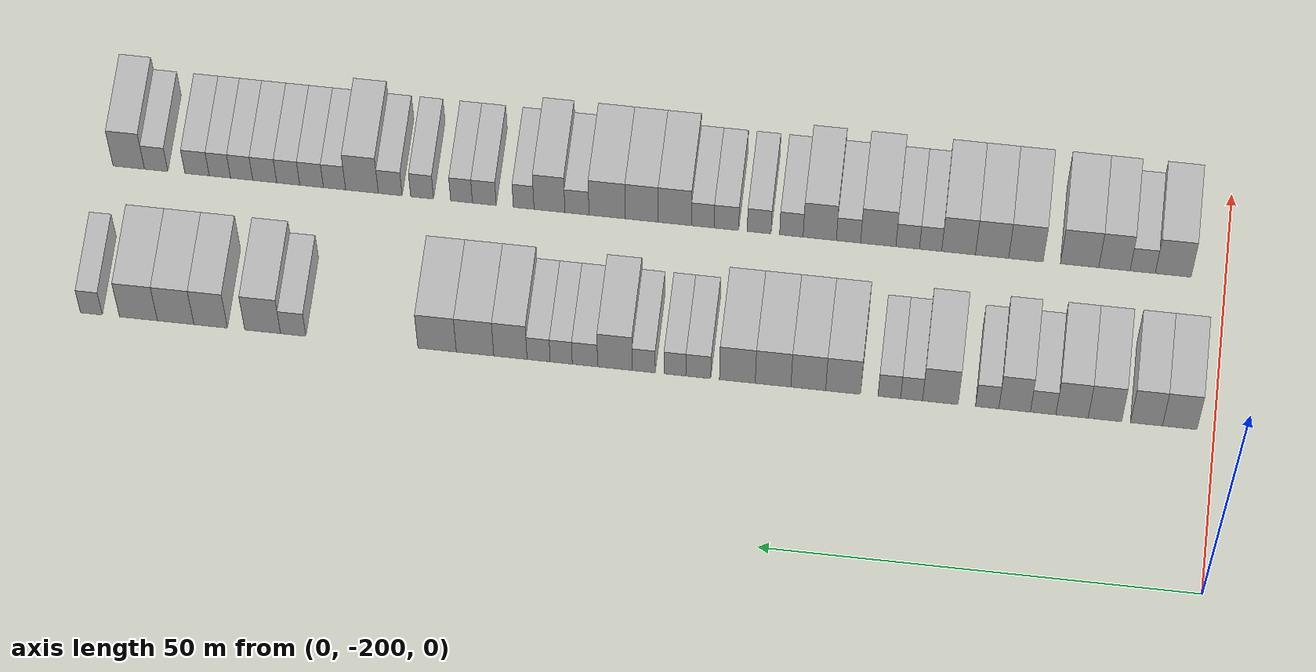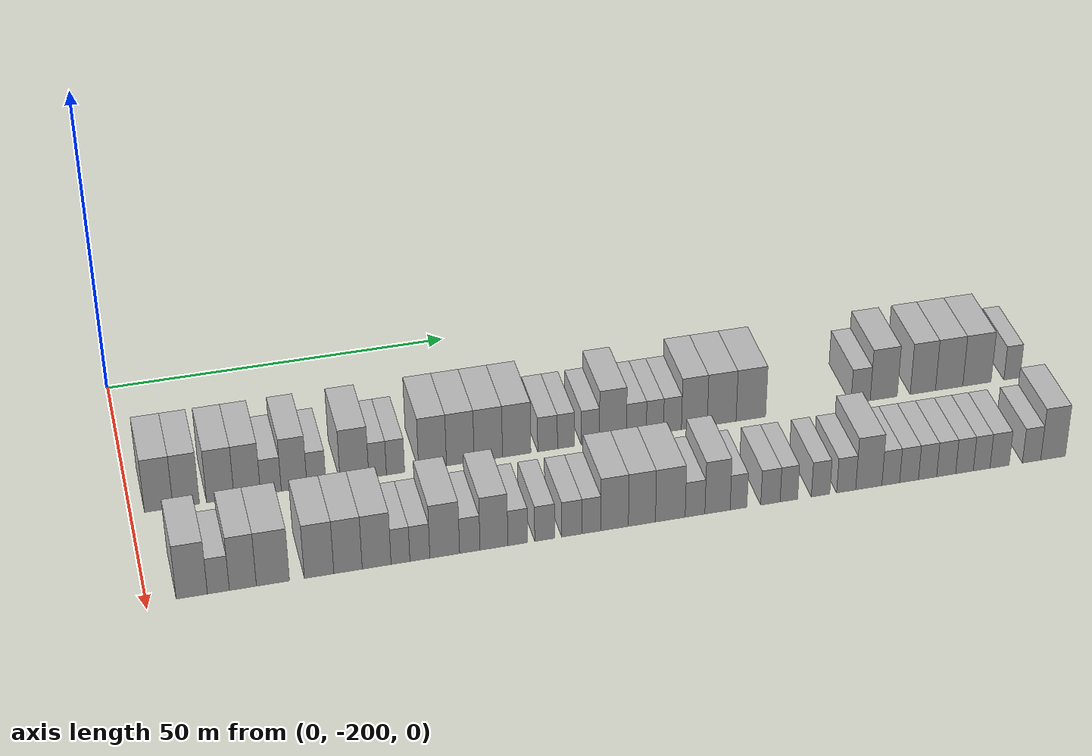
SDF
<sdf version="1.6">
 <world name="default">
  <model name="building_1">
   <static>1</static>
   <pose>25.0000 -196.0314 0 0.000000 0.000000 0.000000</pose>
   <link name="link">
    <pose>0 0 4.50 0 0 0</pose>
    <collision name="collision"><geometry><box><size>10.0000 3.9372 9.0000</size></box></geometry></collision>
    <visual name="visual">
     <cast_shadows>0</cast_shadows>
     <geometry><box><size>10.0000 3.9372 9.0000</size></box></geometry>
     <material>
      <script>
       <uri>model://HANNAS_wall/materials/scripts</uri>
       <uri>model://HANNAS_wall/materials/textures</uri>
       <name>vrc/HANNAS_wall</name>
      </script>
     </material>
    </visual>
   </link>
  </model>
  <model name="building_2">
   <static>1</static>
   <pose>25.0000 -192.2365 0 0.000000 0.000000 0.000000</pose>
   <link name="link">
    <pose>0 0 4.50 0 0 0</pose>
    <collision name="collision"><geometry><box><size>10.0000 3.6526 9.0000</size></box></geometry></collision>
    <visual name="visual">
     <cast_shadows>0</cast_shadows>
     <geometry><box><size>10.0000 3.6526 9.0000</size></box></geometry>
     <material>
      <script>
       <uri>model://HANNAS_wall/materials/scripts</uri>
       <uri>model://HANNAS_wall/materials/textures</uri>
       <name>vrc/HANNAS_wall</name>
      </script>
     </material>
    </visual>
   </link>
  </model>
  <model name="building_3">
   <static>1</static>
   <pose>25.0000 -187.5017 0 0.000000 0.000000 0.000000</pose>
   <link name="link">
    <pose>0 0 4.50 0 0 0</pose>
    <collision name="collision"><geometry><box><size>10.0000 3.8169 9.0000</size></box></geometry></collision>
    <visual name="visual">
     <cast_shadows>0</cast_shadows>
     <geometry><box><size>10.0000 3.8169 9.0000</size></box></geometry>
     <material>
      <script>
       <uri>model://HANNAS_wall/materials/scripts</uri>
       <uri>model://HANNAS_wall/materials/textures</uri>
       <name>vrc/HANNAS_wall</name>
      </script>
     </material>
    </visual>
   </link>
  </model>
  <model name="building_4">
   <static>1</static>
   <pose>25.0000 -183.7541 0 0.000000 0.000000 0.000000</pose>
   <link name="link">
    <pose>0 0 4.50 0 0 0</pose>
    <collision name="collision"><geometry><box><size>10.0000 3.6784 9.0000</size></box></geometry></collision>
    <visual name="visual">
     <cast_shadows>0</cast_shadows>
     <geometry><box><size>10.0000 3.6784 9.0000</size></box></geometry>
     <material>
      <script>
       <uri>model://HANNAS_wall/materials/scripts</uri>
       <uri>model://HANNAS_wall/materials/textures</uri>
       <name>vrc/HANNAS_wall</name>
      </script>
     </material>
    </visual>
   </link>
  </model>
  <model name="building_5">
   <static>1</static>
   <pose>25.0000 -180.4640 0 0.000000 0.000000 0.000000</pose>
   <link name="link">
    <pose>0 0 3.00 0 0 0</pose>
    <collision name="collision"><geometry><box><size>10.0000 2.9017 6.0000</size></box></geometry></collision>
    <visual name="visual">
     <cast_shadows>0</cast_shadows>
     <geometry><box><size>10.0000 2.9017 6.0000</size></box></geometry>
     <material>
      <script>
       <uri>model://HANNAS_wall/materials/scripts</uri>
       <uri>model://HANNAS_wall/materials/textures</uri>
       <name>vrc/HANNAS_wall</name>
      </script>
     </material>
    </visual>
   </link>
  </model>
  <model name="building_6">
   <static>1</static>
   <pose>25.0000 -177.2093 0 0.000000 0.000000 0.000000</pose>
   <link name="link">
    <pose>0 0 4.50 0 0 0</pose>
    <collision name="collision"><geometry><box><size>10.0000 3.6077 9.0000</size></box></geometry></collision>
    <visual name="visual">
     <cast_shadows>0</cast_shadows>
     <geometry><box><size>10.0000 3.6077 9.0000</size></box></geometry>
     <material>
      <script>
       <uri>model://HANNAS_wall/materials/scripts</uri>
       <uri>model://HANNAS_wall/materials/textures</uri>
       <name>vrc/HANNAS_wall</name>
      </script>
     </material>
    </visual>
   </link>
  </model>
  <model name="building_7">
   <static>1</static>
   <pose>25.0000 -174.0762 0 0.000000 0.000000 0.000000</pose>
   <link name="link">
    <pose>0 0 3.00 0 0 0</pose>
    <collision name="collision"><geometry><box><size>10.0000 2.6586 6.0000</size></box></geometry></collision>
    <visual name="visual">
     <cast_shadows>0</cast_shadows>
     <geometry><box><size>10.0000 2.6586 6.0000</size></box></geometry>
     <material>
      <script>
       <uri>model://HANNAS_wall/materials/scripts</uri>
       <uri>model://HANNAS_wall/materials/textures</uri>
       <name>vrc/HANNAS_wall</name>
      </script>
     </material>
    </visual>
   </link>
  </model>
  <model name="building_8">
   <static>1</static>
   <pose>25.0000 -168.7161 0 0.000000 0.000000 0.000000</pose>
   <link name="link">
    <pose>0 0 4.50 0 0 0</pose>
    <collision name="collision"><geometry><box><size>10.0000 4.0615 9.0000</size></box></geometry></collision>
    <visual name="visual">
     <cast_shadows>0</cast_shadows>
     <geometry><box><size>10.0000 4.0615 9.0000</size></box></geometry>
     <material>
      <script>
       <uri>model://HANNAS_wall/materials/scripts</uri>
       <uri>model://HANNAS_wall/materials/textures</uri>
       <name>vrc/HANNAS_wall</name>
      </script>
     </material>
    </visual>
   </link>
  </model>
  <model name="building_9">
   <static>1</static>
   <pose>25.0000 -165.4350 0 0.000000 0.000000 0.000000</pose>
   <link name="link">
    <pose>0 0 3.00 0 0 0</pose>
    <collision name="collision"><geometry><box><size>10.0000 2.5007 6.0000</size></box></geometry></collision>
    <visual name="visual">
     <cast_shadows>0</cast_shadows>
     <geometry><box><size>10.0000 2.5007 6.0000</size></box></geometry>
     <material>
      <script>
       <uri>model://HANNAS_wall/materials/scripts</uri>
       <uri>model://HANNAS_wall/materials/textures</uri>
       <name>vrc/HANNAS_wall</name>
      </script>
     </material>
    </visual>
   </link>
  </model>
  <model name="building_10">
   <static>1</static>
   <pose>25.0000 -162.8917 0 0.000000 0.000000 0.000000</pose>
   <link name="link">
    <pose>0 0 3.00 0 0 0</pose>
    <collision name="collision"><geometry><box><size>10.0000 2.5860 6.0000</size></box></geometry></collision>
    <visual name="visual">
     <cast_shadows>0</cast_shadows>
     <geometry><box><size>10.0000 2.5860 6.0000</size></box></geometry>
     <material>
      <script>
       <uri>model://HANNAS_wall/materials/scripts</uri>
       <uri>model://HANNAS_wall/materials/textures</uri>
       <name>vrc/HANNAS_wall</name>
      </script>
     </material>
    </visual>
   </link>
  </model>
  <model name="building_11">
   <static>1</static>
   <pose>25.0000 -157.6022 0 0.000000 0.000000 0.000000</pose>
   <link name="link">
    <pose>0 0 4.50 0 0 0</pose>
    <collision name="collision"><geometry><box><size>10.0000 3.9928 9.0000</size></box></geometry></collision>
    <visual name="visual">
     <cast_shadows>0</cast_shadows>
     <geometry><box><size>10.0000 3.9928 9.0000</size></box></geometry>
     <material>
      <script>
       <uri>model://HANNAS_wall/materials/scripts</uri>
       <uri>model://HANNAS_wall/materials/textures</uri>
       <name>vrc/HANNAS_wall</name>
      </script>
     </material>
    </visual>
   </link>
  </model>
  <model name="building_12">
   <static>1</static>
   <pose>25.0000 -153.6152 0 0.000000 0.000000 0.000000</pose>
   <link name="link">
    <pose>0 0 4.50 0 0 0</pose>
    <collision name="collision"><geometry><box><size>10.0000 3.9812 9.0000</size></box></geometry></collision>
    <visual name="visual">
     <cast_shadows>0</cast_shadows>
     <geometry><box><size>10.0000 3.9812 9.0000</size></box></geometry>
     <material>
      <script>
       <uri>model://HANNAS_wall/materials/scripts</uri>
       <uri>model://HANNAS_wall/materials/textures</uri>
       <name>vrc/HANNAS_wall</name>
      </script>
     </material>
    </visual>
   </link>
  </model>
  <model name="building_13">
   <static>1</static>
   <pose>25.0000 -149.5801 0 0.000000 0.000000 0.000000</pose>
   <link name="link">
    <pose>0 0 4.50 0 0 0</pose>
    <collision name="collision"><geometry><box><size>10.0000 4.0890 9.0000</size></box></geometry></collision>
    <visual name="visual">
     <cast_shadows>0</cast_shadows>
     <geometry><box><size>10.0000 4.0890 9.0000</size></box></geometry>
     <material>
      <script>
       <uri>model://HANNAS_wall/materials/scripts</uri>
       <uri>model://HANNAS_wall/materials/textures</uri>
       <name>vrc/HANNAS_wall</name>
      </script>
     </material>
    </visual>
   </link>
  </model>
  <model name="building_14">
   <static>1</static>
   <pose>25.0000 -145.4824 0 0.000000 0.000000 0.000000</pose>
   <link name="link">
    <pose>0 0 4.50 0 0 0</pose>
    <collision name="collision"><geometry><box><size>10.0000 4.1064 9.0000</size></box></geometry></collision>
    <visual name="visual">
     <cast_shadows>0</cast_shadows>
     <geometry><box><size>10.0000 4.1064 9.0000</size></box></geometry>
     <material>
      <script>
       <uri>model://HANNAS_wall/materials/scripts</uri>
       <uri>model://HANNAS_wall/materials/textures</uri>
       <name>vrc/HANNAS_wall</name>
      </script>
     </material>
    </visual>
   </link>
  </model>
  <model name="building_15">
   <static>1</static>
   <pose>25.0000 -140.9967 0 0.000000 0.000000 0.000000</pose>
   <link name="link">
    <pose>0 0 3.00 0 0 0</pose>
    <collision name="collision"><geometry><box><size>10.0000 2.8648 6.0000</size></box></geometry></collision>
    <visual name="visual">
     <cast_shadows>0</cast_shadows>
     <geometry><box><size>10.0000 2.8648 6.0000</size></box></geometry>
     <material>
      <script>
       <uri>model://HANNAS_wall/materials/scripts</uri>
       <uri>model://HANNAS_wall/materials/textures</uri>
       <name>vrc/HANNAS_wall</name>
      </script>
     </material>
    </visual>
   </link>
  </model>
  <model name="building_16">
   <static>1</static>
   <pose>25.0000 -138.3111 0 0.000000 0.000000 0.000000</pose>
   <link name="link">
    <pose>0 0 3.00 0 0 0</pose>
    <collision name="collision"><geometry><box><size>10.0000 2.5065 6.0000</size></box></geometry></collision>
    <visual name="visual">
     <cast_shadows>0</cast_shadows>
     <geometry><box><size>10.0000 2.5065 6.0000</size></box></geometry>
     <material>
      <script>
       <uri>model://HANNAS_wall/materials/scripts</uri>
       <uri>model://HANNAS_wall/materials/textures</uri>
       <name>vrc/HANNAS_wall</name>
      </script>
     </material>
    </visual>
   </link>
  </model>
  <model name="building_17">
   <static>1</static>
   <pose>25.0000 -134.7319 0 0.000000 0.000000 0.000000</pose>
   <link name="link">
    <pose>0 0 3.00 0 0 0</pose>
    <collision name="collision"><geometry><box><size>10.0000 2.6518 6.0000</size></box></geometry></collision>
    <visual name="visual">
     <cast_shadows>0</cast_shadows>
     <geometry><box><size>10.0000 2.6518 6.0000</size></box></geometry>
     <material>
      <script>
       <uri>model://HANNAS_wall/materials/scripts</uri>
       <uri>model://HANNAS_wall/materials/textures</uri>
       <name>vrc/HANNAS_wall</name>
      </script>
     </material>
    </visual>
   </link>
  </model>
  <model name="building_18">
   <static>1</static>
   <pose>25.0000 -131.4228 0 0.000000 0.000000 0.000000</pose>
   <link name="link">
    <pose>0 0 4.50 0 0 0</pose>
    <collision name="collision"><geometry><box><size>10.0000 3.9664 9.0000</size></box></geometry></collision>
    <visual name="visual">
     <cast_shadows>0</cast_shadows>
     <geometry><box><size>10.0000 3.9664 9.0000</size></box></geometry>
     <material>
      <script>
       <uri>model://HANNAS_wall/materials/scripts</uri>
       <uri>model://HANNAS_wall/materials/textures</uri>
       <name>vrc/HANNAS_wall</name>
      </script>
     </material>
    </visual>
   </link>
  </model>
  <model name="building_19">
   <static>1</static>
   <pose>25.0000 -127.9781 0 0.000000 0.000000 0.000000</pose>
   <link name="link">
    <pose>0 0 3.00 0 0 0</pose>
    <collision name="collision"><geometry><box><size>10.0000 2.9230 6.0000</size></box></geometry></collision>
    <visual name="visual">
     <cast_shadows>0</cast_shadows>
     <geometry><box><size>10.0000 2.9230 6.0000</size></box></geometry>
     <material>
      <script>
       <uri>model://HANNAS_wall/materials/scripts</uri>
       <uri>model://HANNAS_wall/materials/textures</uri>
       <name>vrc/HANNAS_wall</name>
      </script>
     </material>
    </visual>
   </link>
  </model>
  <model name="building_20">
   <static>1</static>
   <pose>25.0000 -125.2448 0 0.000000 0.000000 0.000000</pose>
   <link name="link">
    <pose>0 0 3.00 0 0 0</pose>
    <collision name="collision"><geometry><box><size>10.0000 2.5437 6.0000</size></box></geometry></collision>
    <visual name="visual">
     <cast_shadows>0</cast_shadows>
     <geometry><box><size>10.0000 2.5437 6.0000</size></box></geometry>
     <material>
      <script>
       <uri>model://HANNAS_wall/materials/scripts</uri>
       <uri>model://HANNAS_wall/materials/textures</uri>
       <name>vrc/HANNAS_wall</name>
      </script>
     </material>
    </visual>
   </link>
  </model>
  <model name="building_21">
   <static>1</static>
   <pose>25.0000 -122.6416 0 0.000000 0.000000 0.000000</pose>
   <link name="link">
    <pose>0 0 3.00 0 0 0</pose>
    <collision name="collision"><geometry><box><size>10.0000 2.6627 6.0000</size></box></geometry></collision>
    <visual name="visual">
     <cast_shadows>0</cast_shadows>
     <geometry><box><size>10.0000 2.6627 6.0000</size></box></geometry>
     <material>
      <script>
       <uri>model://HANNAS_wall/materials/scripts</uri>
       <uri>model://HANNAS_wall/materials/textures</uri>
       <name>vrc/HANNAS_wall</name>
      </script>
     </material>
    </visual>
   </link>
  </model>
  <model name="building_22">
   <static>1</static>
   <pose>25.0000 -119.3938 0 0.000000 0.000000 0.000000</pose>
   <link name="link">
    <pose>0 0 4.50 0 0 0</pose>
    <collision name="collision"><geometry><box><size>10.0000 3.8329 9.0000</size></box></geometry></collision>
    <visual name="visual">
     <cast_shadows>0</cast_shadows>
     <geometry><box><size>10.0000 3.8329 9.0000</size></box></geometry>
     <material>
      <script>
       <uri>model://HANNAS_wall/materials/scripts</uri>
       <uri>model://HANNAS_wall/materials/textures</uri>
       <name>vrc/HANNAS_wall</name>
      </script>
     </material>
    </visual>
   </link>
  </model>
  <model name="building_23">
   <static>1</static>
   <pose>25.0000 -115.3170 0 0.000000 0.000000 0.000000</pose>
   <link name="link">
    <pose>0 0 4.50 0 0 0</pose>
    <collision name="collision"><geometry><box><size>10.0000 4.3206 9.0000</size></box></geometry></collision>
    <visual name="visual">
     <cast_shadows>0</cast_shadows>
     <geometry><box><size>10.0000 4.3206 9.0000</size></box></geometry>
     <material>
      <script>
       <uri>model://HANNAS_wall/materials/scripts</uri>
       <uri>model://HANNAS_wall/materials/textures</uri>
       <name>vrc/HANNAS_wall</name>
      </script>
     </material>
    </visual>
   </link>
  </model>
  <model name="building_24">
   <static>1</static>
   <pose>25.0000 -110.9429 0 0.000000 0.000000 0.000000</pose>
   <link name="link">
    <pose>0 0 4.50 0 0 0</pose>
    <collision name="collision"><geometry><box><size>10.0000 4.4276 9.0000</size></box></geometry></collision>
    <visual name="visual">
     <cast_shadows>0</cast_shadows>
     <geometry><box><size>10.0000 4.4276 9.0000</size></box></geometry>
     <material>
      <script>
       <uri>model://HANNAS_wall/materials/scripts</uri>
       <uri>model://HANNAS_wall/materials/textures</uri>
       <name>vrc/HANNAS_wall</name>
      </script>
     </material>
    </visual>
   </link>
  </model>
  <model name="building_25">
   <static>1</static>
   <pose>25.0000 -94.3195 0 0.000000 0.000000 0.000000</pose>
   <link name="link">
    <pose>0 0 3.00 0 0 0</pose>
    <collision name="collision"><geometry><box><size>10.0000 2.9398 6.0000</size></box></geometry></collision>
    <visual name="visual">
     <cast_shadows>0</cast_shadows>
     <geometry><box><size>10.0000 2.9398 6.0000</size></box></geometry>
     <material>
      <script>
       <uri>model://HANNAS_wall/materials/scripts</uri>
       <uri>model://HANNAS_wall/materials/textures</uri>
       <name>vrc/HANNAS_wall</name>
      </script>
     </material>
    </visual>
   </link>
  </model>
  <model name="building_26">
   <static>1</static>
   <pose>25.0000 -90.7774 0 0.000000 0.000000 0.000000</pose>
   <link name="link">
    <pose>0 0 4.50 0 0 0</pose>
    <collision name="collision"><geometry><box><size>10.0000 4.1444 9.0000</size></box></geometry></collision>
    <visual name="visual">
     <cast_shadows>0</cast_shadows>
     <geometry><box><size>10.0000 4.1444 9.0000</size></box></geometry>
     <material>
      <script>
       <uri>model://HANNAS_wall/materials/scripts</uri>
       <uri>model://HANNAS_wall/materials/textures</uri>
       <name>vrc/HANNAS_wall</name>
      </script>
     </material>
    </visual>
   </link>
  </model>
  <model name="building_27">
   <static>1</static>
   <pose>25.0000 -84.7601 0 0.000000 0.000000 0.000000</pose>
   <link name="link">
    <pose>0 0 4.50 0 0 0</pose>
    <collision name="collision"><geometry><box><size>10.0000 3.8902 9.0000</size></box></geometry></collision>
    <visual name="visual">
     <cast_shadows>0</cast_shadows>
     <geometry><box><size>10.0000 3.8902 9.0000</size></box></geometry>
     <material>
      <script>
       <uri>model://HANNAS_wall/materials/scripts</uri>
       <uri>model://HANNAS_wall/materials/textures</uri>
       <name>vrc/HANNAS_wall</name>
      </script>
     </material>
    </visual>
   </link>
  </model>
  <model name="building_28">
   <static>1</static>
   <pose>25.0000 -80.6987 0 0.000000 0.000000 0.000000</pose>
   <link name="link">
    <pose>0 0 4.50 0 0 0</pose>
    <collision name="collision"><geometry><box><size>10.0000 4.2326 9.0000</size></box></geometry></collision>
    <visual name="visual">
     <cast_shadows>0</cast_shadows>
     <geometry><box><size>10.0000 4.2326 9.0000</size></box></geometry>
     <material>
      <script>
       <uri>model://HANNAS_wall/materials/scripts</uri>
       <uri>model://HANNAS_wall/materials/textures</uri>
       <name>vrc/HANNAS_wall</name>
      </script>
     </material>
    </visual>
   </link>
  </model>
  <model name="building_29">
   <static>1</static>
   <pose>25.0000 -76.3825 0 0.000000 0.000000 0.000000</pose>
   <link name="link">
    <pose>0 0 4.50 0 0 0</pose>
    <collision name="collision"><geometry><box><size>10.0000 4.3999 9.0000</size></box></geometry></collision>
    <visual name="visual">
     <cast_shadows>0</cast_shadows>
     <geometry><box><size>10.0000 4.3999 9.0000</size></box></geometry>
     <material>
      <script>
       <uri>model://HANNAS_wall/materials/scripts</uri>
       <uri>model://HANNAS_wall/materials/textures</uri>
       <name>vrc/HANNAS_wall</name>
      </script>
     </material>
    </visual>
   </link>
  </model>
  <model name="building_30">
   <static>1</static>
   <pose>25.0000 -70.9195 0 0.000000 0.000000 0.000000</pose>
   <link name="link">
    <pose>0 0 3.00 0 0 0</pose>
    <collision name="collision"><geometry><box><size>10.0000 2.5261 6.0000</size></box></geometry></collision>
    <visual name="visual">
     <cast_shadows>0</cast_shadows>
     <geometry><box><size>10.0000 2.5261 6.0000</size></box></geometry>
     <material>
      <script>
       <uri>model://HANNAS_wall/materials/scripts</uri>
       <uri>model://HANNAS_wall/materials/textures</uri>
       <name>vrc/HANNAS_wall</name>
      </script>
     </material>
    </visual>
   </link>
  </model>
  <model name="building_96">
   <static>1</static>
   <pose>44.0000 -193.9268 0 0.000000 0.000000 0.000000</pose>
   <link name="link">
    <pose>0 0 4.50 0 0 0</pose>
    <collision name="collision"><geometry><box><size>10.0000 4.1465 9.0000</size></box></geometry></collision>
    <visual name="visual">
     <cast_shadows>0</cast_shadows>
     <geometry><box><size>10.0000 4.1465 9.0000</size></box></geometry>
     <material>
      <script>
       <uri>model://HANNAS_wall/materials/scripts</uri>
       <uri>model://HANNAS_wall/materials/textures</uri>
       <name>vrc/HANNAS_wall</name>
      </script>
     </material>
    </visual>
   </link>
  </model>
  <model name="building_97">
   <static>1</static>
   <pose>44.0000 -190.3989 0 0.000000 0.000000 0.000000</pose>
   <link name="link">
    <pose>0 0 3.00 0 0 0</pose>
    <collision name="collision"><geometry><box><size>10.0000 2.9093 6.0000</size></box></geometry></collision>
    <visual name="visual">
     <cast_shadows>0</cast_shadows>
     <geometry><box><size>10.0000 2.9093 6.0000</size></box></geometry>
     <material>
      <script>
       <uri>model://HANNAS_wall/materials/scripts</uri>
       <uri>model://HANNAS_wall/materials/textures</uri>
       <name>vrc/HANNAS_wall</name>
      </script>
     </material>
    </visual>
   </link>
  </model>
  <model name="building_98">
   <static>1</static>
   <pose>44.0000 -187.1376 0 0.000000 0.000000 0.000000</pose>
   <link name="link">
    <pose>0 0 4.50 0 0 0</pose>
    <collision name="collision"><geometry><box><size>10.0000 3.6134 9.0000</size></box></geometry></collision>
    <visual name="visual">
     <cast_shadows>0</cast_shadows>
     <geometry><box><size>10.0000 3.6134 9.0000</size></box></geometry>
     <material>
      <script>
       <uri>model://HANNAS_wall/materials/scripts</uri>
       <uri>model://HANNAS_wall/materials/textures</uri>
       <name>vrc/HANNAS_wall</name>
      </script>
     </material>
    </visual>
   </link>
  </model>
  <model name="building_99">
   <static>1</static>
   <pose>44.0000 -183.1146 0 0.000000 0.000000 0.000000</pose>
   <link name="link">
    <pose>0 0 4.50 0 0 0</pose>
    <collision name="collision"><geometry><box><size>10.0000 4.4325 9.0000</size></box></geometry></collision>
    <visual name="visual">
     <cast_shadows>0</cast_shadows>
     <geometry><box><size>10.0000 4.4325 9.0000</size></box></geometry>
     <material>
      <script>
       <uri>model://HANNAS_wall/materials/scripts</uri>
       <uri>model://HANNAS_wall/materials/textures</uri>
       <name>vrc/HANNAS_wall</name>
      </script>
     </material>
    </visual>
   </link>
  </model>
  <model name="building_100">
   <static>1</static>
   <pose>44.0000 -176.9032 0 0.000000 0.000000 0.000000</pose>
   <link name="link">
    <pose>0 0 4.50 0 0 0</pose>
    <collision name="collision"><geometry><box><size>10.0000 3.9904 9.0000</size></box></geometry></collision>
    <visual name="visual">
     <cast_shadows>0</cast_shadows>
     <geometry><box><size>10.0000 3.9904 9.0000</size></box></geometry>
     <material>
      <script>
       <uri>model://HANNAS_wall/materials/scripts</uri>
       <uri>model://HANNAS_wall/materials/textures</uri>
       <name>vrc/HANNAS_wall</name>
      </script>
     </material>
    </visual>
   </link>
  </model>
  <model name="building_101">
   <static>1</static>
   <pose>44.0000 -172.9872 0 0.000000 0.000000 0.000000</pose>
   <link name="link">
    <pose>0 0 4.50 0 0 0</pose>
    <collision name="collision"><geometry><box><size>10.0000 3.8416 9.0000</size></box></geometry></collision>
    <visual name="visual">
     <cast_shadows>0</cast_shadows>
     <geometry><box><size>10.0000 3.8416 9.0000</size></box></geometry>
     <material>
      <script>
       <uri>model://HANNAS_wall/materials/scripts</uri>
       <uri>model://HANNAS_wall/materials/textures</uri>
       <name>vrc/HANNAS_wall</name>
      </script>
     </material>
    </visual>
   </link>
  </model>
  <model name="building_102">
   <static>1</static>
   <pose>44.0000 -169.1056 0 0.000000 0.000000 0.000000</pose>
   <link name="link">
    <pose>0 0 4.50 0 0 0</pose>
    <collision name="collision"><geometry><box><size>10.0000 3.9216 9.0000</size></box></geometry></collision>
    <visual name="visual">
     <cast_shadows>0</cast_shadows>
     <geometry><box><size>10.0000 3.9216 9.0000</size></box></geometry>
     <material>
      <script>
       <uri>model://HANNAS_wall/materials/scripts</uri>
       <uri>model://HANNAS_wall/materials/textures</uri>
       <name>vrc/HANNAS_wall</name>
      </script>
     </material>
    </visual>
   </link>
  </model>
  <model name="building_103">
   <static>1</static>
   <pose>44.0000 -165.8588 0 0.000000 0.000000 0.000000</pose>
   <link name="link">
    <pose>0 0 3.00 0 0 0</pose>
    <collision name="collision"><geometry><box><size>10.0000 2.5721 6.0000</size></box></geometry></collision>
    <visual name="visual">
     <cast_shadows>0</cast_shadows>
     <geometry><box><size>10.0000 2.5721 6.0000</size></box></geometry>
     <material>
      <script>
       <uri>model://HANNAS_wall/materials/scripts</uri>
       <uri>model://HANNAS_wall/materials/textures</uri>
       <name>vrc/HANNAS_wall</name>
      </script>
     </material>
    </visual>
   </link>
  </model>
  <model name="building_104">
   <static>1</static>
   <pose>44.0000 -163.2082 0 0.000000 0.000000 0.000000</pose>
   <link name="link">
    <pose>0 0 3.00 0 0 0</pose>
    <collision name="collision"><geometry><box><size>10.0000 2.7291 6.0000</size></box></geometry></collision>
    <visual name="visual">
     <cast_shadows>0</cast_shadows>
     <geometry><box><size>10.0000 2.7291 6.0000</size></box></geometry>
     <material>
      <script>
       <uri>model://HANNAS_wall/materials/scripts</uri>
       <uri>model://HANNAS_wall/materials/textures</uri>
       <name>vrc/HANNAS_wall</name>
      </script>
     </material>
    </visual>
   </link>
  </model>
  <model name="building_105">
   <static>1</static>
   <pose>44.0000 -159.7943 0 0.000000 0.000000 0.000000</pose>
   <link name="link">
    <pose>0 0 4.50 0 0 0</pose>
    <collision name="collision"><geometry><box><size>10.0000 4.0986 9.0000</size></box></geometry></collision>
    <visual name="visual">
     <cast_shadows>0</cast_shadows>
     <geometry><box><size>10.0000 4.0986 9.0000</size></box></geometry>
     <material>
      <script>
       <uri>model://HANNAS_wall/materials/scripts</uri>
       <uri>model://HANNAS_wall/materials/textures</uri>
       <name>vrc/HANNAS_wall</name>
      </script>
     </material>
    </visual>
   </link>
  </model>
  <model name="building_106">
   <static>1</static>
   <pose>44.0000 -156.3377 0 0.000000 0.000000 0.000000</pose>
   <link name="link">
    <pose>0 0 3.00 0 0 0</pose>
    <collision name="collision"><geometry><box><size>10.0000 2.8147 6.0000</size></box></geometry></collision>
    <visual name="visual">
     <cast_shadows>0</cast_shadows>
     <geometry><box><size>10.0000 2.8147 6.0000</size></box></geometry>
     <material>
      <script>
       <uri>model://HANNAS_wall/materials/scripts</uri>
       <uri>model://HANNAS_wall/materials/textures</uri>
       <name>vrc/HANNAS_wall</name>
      </script>
     </material>
    </visual>
   </link>
  </model>
  <model name="building_107">
   <static>1</static>
   <pose>44.0000 -153.0016 0 0.000000 0.000000 0.000000</pose>
   <link name="link">
    <pose>0 0 4.50 0 0 0</pose>
    <collision name="collision"><geometry><box><size>10.0000 3.8574 9.0000</size></box></geometry></collision>
    <visual name="visual">
     <cast_shadows>0</cast_shadows>
     <geometry><box><size>10.0000 3.8574 9.0000</size></box></geometry>
     <material>
      <script>
       <uri>model://HANNAS_wall/materials/scripts</uri>
       <uri>model://HANNAS_wall/materials/textures</uri>
       <name>vrc/HANNAS_wall</name>
      </script>
     </material>
    </visual>
   </link>
  </model>
  <model name="building_108">
   <static>1</static>
   <pose>44.0000 -149.7083 0 0.000000 0.000000 0.000000</pose>
   <link name="link">
    <pose>0 0 3.00 0 0 0</pose>
    <collision name="collision"><geometry><box><size>10.0000 2.7293 6.0000</size></box></geometry></collision>
    <visual name="visual">
     <cast_shadows>0</cast_shadows>
     <geometry><box><size>10.0000 2.7293 6.0000</size></box></geometry>
     <material>
      <script>
       <uri>model://HANNAS_wall/materials/scripts</uri>
       <uri>model://HANNAS_wall/materials/textures</uri>
       <name>vrc/HANNAS_wall</name>
      </script>
     </material>
    </visual>
   </link>
  </model>
  <model name="building_109">
   <static>1</static>
   <pose>44.0000 -145.9600 0 0.000000 0.000000 0.000000</pose>
   <link name="link">
    <pose>0 0 3.00 0 0 0</pose>
    <collision name="collision"><geometry><box><size>10.0000 2.7674 6.0000</size></box></geometry></collision>
    <visual name="visual">
     <cast_shadows>0</cast_shadows>
     <geometry><box><size>10.0000 2.7674 6.0000</size></box></geometry>
     <material>
      <script>
       <uri>model://HANNAS_wall/materials/scripts</uri>
       <uri>model://HANNAS_wall/materials/textures</uri>
       <name>vrc/HANNAS_wall</name>
      </script>
     </material>
    </visual>
   </link>
  </model>
  <model name="building_110">
   <static>1</static>
   <pose>44.0000 -142.1469 0 0.000000 0.000000 0.000000</pose>
   <link name="link">
    <pose>0 0 3.00 0 0 0</pose>
    <collision name="collision"><geometry><box><size>10.0000 2.8588 6.0000</size></box></geometry></collision>
    <visual name="visual">
     <cast_shadows>0</cast_shadows>
     <geometry><box><size>10.0000 2.8588 6.0000</size></box></geometry>
     <material>
      <script>
       <uri>model://HANNAS_wall/materials/scripts</uri>
       <uri>model://HANNAS_wall/materials/textures</uri>
       <name>vrc/HANNAS_wall</name>
      </script>
     </material>
    </visual>
   </link>
  </model>
  <model name="building_111">
   <static>1</static>
   <pose>44.0000 -139.4026 0 0.000000 0.000000 0.000000</pose>
   <link name="link">
    <pose>0 0 3.00 0 0 0</pose>
    <collision name="collision"><geometry><box><size>10.0000 2.6296 6.0000</size></box></geometry></collision>
    <visual name="visual">
     <cast_shadows>0</cast_shadows>
     <geometry><box><size>10.0000 2.6296 6.0000</size></box></geometry>
     <material>
      <script>
       <uri>model://HANNAS_wall/materials/scripts</uri>
       <uri>model://HANNAS_wall/materials/textures</uri>
       <name>vrc/HANNAS_wall</name>
      </script>
     </material>
    </visual>
   </link>
  </model>
  <model name="building_112">
   <static>1</static>
   <pose>44.0000 -136.1478 0 0.000000 0.000000 0.000000</pose>
   <link name="link">
    <pose>0 0 4.50 0 0 0</pose>
    <collision name="collision"><geometry><box><size>10.0000 3.8801 9.0000</size></box></geometry></collision>
    <visual name="visual">
     <cast_shadows>0</cast_shadows>
     <geometry><box><size>10.0000 3.8801 9.0000</size></box></geometry>
     <material>
      <script>
       <uri>model://HANNAS_wall/materials/scripts</uri>
       <uri>model://HANNAS_wall/materials/textures</uri>
       <name>vrc/HANNAS_wall</name>
      </script>
     </material>
    </visual>
   </link>
  </model>
  <model name="building_113">
   <static>1</static>
   <pose>44.0000 -132.2910 0 0.000000 0.000000 0.000000</pose>
   <link name="link">
    <pose>0 0 4.50 0 0 0</pose>
    <collision name="collision"><geometry><box><size>10.0000 3.8334 9.0000</size></box></geometry></collision>
    <visual name="visual">
     <cast_shadows>0</cast_shadows>
     <geometry><box><size>10.0000 3.8334 9.0000</size></box></geometry>
     <material>
      <script>
       <uri>model://HANNAS_wall/materials/scripts</uri>
       <uri>model://HANNAS_wall/materials/textures</uri>
       <name>vrc/HANNAS_wall</name>
      </script>
     </material>
    </visual>
   </link>
  </model>
  <model name="building_114">
   <static>1</static>
   <pose>44.0000 -128.2632 0 0.000000 0.000000 0.000000</pose>
   <link name="link">
    <pose>0 0 4.50 0 0 0</pose>
    <collision name="collision"><geometry><box><size>10.0000 4.2223 9.0000</size></box></geometry></collision>
    <visual name="visual">
     <cast_shadows>0</cast_shadows>
     <geometry><box><size>10.0000 4.2223 9.0000</size></box></geometry>
     <material>
      <script>
       <uri>model://HANNAS_wall/materials/scripts</uri>
       <uri>model://HANNAS_wall/materials/textures</uri>
       <name>vrc/HANNAS_wall</name>
      </script>
     </material>
    </visual>
   </link>
  </model>
  <model name="building_115">
   <static>1</static>
   <pose>44.0000 -124.7446 0 0.000000 0.000000 0.000000</pose>
   <link name="link">
    <pose>0 0 3.00 0 0 0</pose>
    <collision name="collision"><geometry><box><size>10.0000 2.8148 6.0000</size></box></geometry></collision>
    <visual name="visual">
     <cast_shadows>0</cast_shadows>
     <geometry><box><size>10.0000 2.8148 6.0000</size></box></geometry>
     <material>
      <script>
       <uri>model://HANNAS_wall/materials/scripts</uri>
       <uri>model://HANNAS_wall/materials/textures</uri>
       <name>vrc/HANNAS_wall</name>
      </script>
     </material>
    </visual>
   </link>
  </model>
  <model name="building_116">
   <static>1</static>
   <pose>44.0000 -121.5329 0 0.000000 0.000000 0.000000</pose>
   <link name="link">
    <pose>0 0 4.50 0 0 0</pose>
    <collision name="collision"><geometry><box><size>10.0000 3.6087 9.0000</size></box></geometry></collision>
    <visual name="visual">
     <cast_shadows>0</cast_shadows>
     <geometry><box><size>10.0000 3.6087 9.0000</size></box></geometry>
     <material>
      <script>
       <uri>model://HANNAS_wall/materials/scripts</uri>
       <uri>model://HANNAS_wall/materials/textures</uri>
       <name>vrc/HANNAS_wall</name>
      </script>
     </material>
    </visual>
   </link>
  </model>
  <model name="building_117">
   <static>1</static>
   <pose>44.0000 -118.5211 0 0.000000 0.000000 0.000000</pose>
   <link name="link">
    <pose>0 0 3.00 0 0 0</pose>
    <collision name="collision"><geometry><box><size>10.0000 2.4150 6.0000</size></box></geometry></collision>
    <visual name="visual">
     <cast_shadows>0</cast_shadows>
     <geometry><box><size>10.0000 2.4150 6.0000</size></box></geometry>
     <material>
      <script>
       <uri>model://HANNAS_wall/materials/scripts</uri>
       <uri>model://HANNAS_wall/materials/textures</uri>
       <name>vrc/HANNAS_wall</name>
      </script>
     </material>
    </visual>
   </link>
  </model>
  <model name="building_118">
   <static>1</static>
   <pose>44.0000 -113.9217 0 0.000000 0.000000 0.000000</pose>
   <link name="link">
    <pose>0 0 3.00 0 0 0</pose>
    <collision name="collision"><geometry><box><size>10.0000 2.7839 6.0000</size></box></geometry></collision>
    <visual name="visual">
     <cast_shadows>0</cast_shadows>
     <geometry><box><size>10.0000 2.7839 6.0000</size></box></geometry>
     <material>
      <script>
       <uri>model://HANNAS_wall/materials/scripts</uri>
       <uri>model://HANNAS_wall/materials/textures</uri>
       <name>vrc/HANNAS_wall</name>
      </script>
     </material>
    </visual>
   </link>
  </model>
  <model name="building_119">
   <static>1</static>
   <pose>44.0000 -111.2571 0 0.000000 0.000000 0.000000</pose>
   <link name="link">
    <pose>0 0 3.00 0 0 0</pose>
    <collision name="collision"><geometry><box><size>10.0000 2.5451 6.0000</size></box></geometry></collision>
    <visual name="visual">
     <cast_shadows>0</cast_shadows>
     <geometry><box><size>10.0000 2.5451 6.0000</size></box></geometry>
     <material>
      <script>
       <uri>model://HANNAS_wall/materials/scripts</uri>
       <uri>model://HANNAS_wall/materials/textures</uri>
       <name>vrc/HANNAS_wall</name>
      </script>
     </material>
    </visual>
   </link>
  </model>
  <model name="building_120">
   <static>1</static>
   <pose>44.0000 -106.6463 0 0.000000 0.000000 0.000000</pose>
   <link name="link">
    <pose>0 0 3.00 0 0 0</pose>
    <collision name="collision"><geometry><box><size>10.0000 2.6765 6.0000</size></box></geometry></collision>
    <visual name="visual">
     <cast_shadows>0</cast_shadows>
     <geometry><box><size>10.0000 2.6765 6.0000</size></box></geometry>
     <material>
      <script>
       <uri>model://HANNAS_wall/materials/scripts</uri>
       <uri>model://HANNAS_wall/materials/textures</uri>
       <name>vrc/HANNAS_wall</name>
      </script>
     </material>
    </visual>
   </link>
  </model>
  <model name="building_121">
   <static>1</static>
   <pose>44.0000 -102.9146 0 0.000000 0.000000 0.000000</pose>
   <link name="link">
    <pose>0 0 3.00 0 0 0</pose>
    <collision name="collision"><geometry><box><size>10.0000 2.7868 6.0000</size></box></geometry></collision>
    <visual name="visual">
     <cast_shadows>0</cast_shadows>
     <geometry><box><size>10.0000 2.7868 6.0000</size></box></geometry>
     <material>
      <script>
       <uri>model://HANNAS_wall/materials/scripts</uri>
       <uri>model://HANNAS_wall/materials/textures</uri>
       <name>vrc/HANNAS_wall</name>
      </script>
     </material>
    </visual>
   </link>
  </model>
  <model name="building_122">
   <static>1</static>
   <pose>44.0000 -99.6037 0 0.000000 0.000000 0.000000</pose>
   <link name="link">
    <pose>0 0 4.50 0 0 0</pose>
    <collision name="collision"><geometry><box><size>10.0000 3.8351 9.0000</size></box></geometry></collision>
    <visual name="visual">
     <cast_shadows>0</cast_shadows>
     <geometry><box><size>10.0000 3.8351 9.0000</size></box></geometry>
     <material>
      <script>
       <uri>model://HANNAS_wall/materials/scripts</uri>
       <uri>model://HANNAS_wall/materials/textures</uri>
       <name>vrc/HANNAS_wall</name>
      </script>
     </material>
    </visual>
   </link>
  </model>
  <model name="building_123">
   <static>1</static>
   <pose>44.0000 -96.3837 0 0.000000 0.000000 0.000000</pose>
   <link name="link">
    <pose>0 0 3.00 0 0 0</pose>
    <collision name="collision"><geometry><box><size>10.0000 2.6048 6.0000</size></box></geometry></collision>
    <visual name="visual">
     <cast_shadows>0</cast_shadows>
     <geometry><box><size>10.0000 2.6048 6.0000</size></box></geometry>
     <material>
      <script>
       <uri>model://HANNAS_wall/materials/scripts</uri>
       <uri>model://HANNAS_wall/materials/textures</uri>
       <name>vrc/HANNAS_wall</name>
      </script>
     </material>
    </visual>
   </link>
  </model>
  <model name="building_124">
   <static>1</static>
   <pose>44.0000 -93.6896 0 0.000000 0.000000 0.000000</pose>
   <link name="link">
    <pose>0 0 3.00 0 0 0</pose>
    <collision name="collision"><geometry><box><size>10.0000 2.7835 6.0000</size></box></geometry></collision>
    <visual name="visual">
     <cast_shadows>0</cast_shadows>
     <geometry><box><size>10.0000 2.7835 6.0000</size></box></geometry>
     <material>
      <script>
       <uri>model://HANNAS_wall/materials/scripts</uri>
       <uri>model://HANNAS_wall/materials/textures</uri>
       <name>vrc/HANNAS_wall</name>
      </script>
     </material>
    </visual>
   </link>
  </model>
  <model name="building_125">
   <static>1</static>
   <pose>44.0000 -90.9522 0 0.000000 0.000000 0.000000</pose>
   <link name="link">
    <pose>0 0 3.00 0 0 0</pose>
    <collision name="collision"><geometry><box><size>10.0000 2.6914 6.0000</size></box></geometry></collision>
    <visual name="visual">
     <cast_shadows>0</cast_shadows>
     <geometry><box><size>10.0000 2.6914 6.0000</size></box></geometry>
     <material>
      <script>
       <uri>model://HANNAS_wall/materials/scripts</uri>
       <uri>model://HANNAS_wall/materials/textures</uri>
       <name>vrc/HANNAS_wall</name>
      </script>
     </material>
    </visual>
   </link>
  </model>
  <model name="building_126">
   <static>1</static>
   <pose>44.0000 -88.1990 0 0.000000 0.000000 0.000000</pose>
   <link name="link">
    <pose>0 0 3.00 0 0 0</pose>
    <collision name="collision"><geometry><box><size>10.0000 2.8150 6.0000</size></box></geometry></collision>
    <visual name="visual">
     <cast_shadows>0</cast_shadows>
     <geometry><box><size>10.0000 2.8150 6.0000</size></box></geometry>
     <material>
      <script>
       <uri>model://HANNAS_wall/materials/scripts</uri>
       <uri>model://HANNAS_wall/materials/textures</uri>
       <name>vrc/HANNAS_wall</name>
      </script>
     </material>
    </visual>
   </link>
  </model>
  <model name="building_127">
   <static>1</static>
   <pose>44.0000 -85.4822 0 0.000000 0.000000 0.000000</pose>
   <link name="link">
    <pose>0 0 3.00 0 0 0</pose>
    <collision name="collision"><geometry><box><size>10.0000 2.6184 6.0000</size></box></geometry></collision>
    <visual name="visual">
     <cast_shadows>0</cast_shadows>
     <geometry><box><size>10.0000 2.6184 6.0000</size></box></geometry>
     <material>
      <script>
       <uri>model://HANNAS_wall/materials/scripts</uri>
       <uri>model://HANNAS_wall/materials/textures</uri>
       <name>vrc/HANNAS_wall</name>
      </script>
     </material>
    </visual>
   </link>
  </model>
  <model name="building_128">
   <static>1</static>
   <pose>44.0000 -82.9210 0 0.000000 0.000000 0.000000</pose>
   <link name="link">
    <pose>0 0 3.00 0 0 0</pose>
    <collision name="collision"><geometry><box><size>10.0000 2.5041 6.0000</size></box></geometry></collision>
    <visual name="visual">
     <cast_shadows>0</cast_shadows>
     <geometry><box><size>10.0000 2.5041 6.0000</size></box></geometry>
     <material>
      <script>
       <uri>model://HANNAS_wall/materials/scripts</uri>
       <uri>model://HANNAS_wall/materials/textures</uri>
       <name>vrc/HANNAS_wall</name>
      </script>
     </material>
    </visual>
   </link>
  </model>
  <model name="building_129">
   <static>1</static>
   <pose>44.0000 -80.2394 0 0.000000 0.000000 0.000000</pose>
   <link name="link">
    <pose>0 0 3.00 0 0 0</pose>
    <collision name="collision"><geometry><box><size>10.0000 2.8590 6.0000</size></box></geometry></collision>
    <visual name="visual">
     <cast_shadows>0</cast_shadows>
     <geometry><box><size>10.0000 2.8590 6.0000</size></box></geometry>
     <material>
      <script>
       <uri>model://HANNAS_wall/materials/scripts</uri>
       <uri>model://HANNAS_wall/materials/textures</uri>
       <name>vrc/HANNAS_wall</name>
      </script>
     </material>
    </visual>
   </link>
  </model>
  <model name="building_130">
   <static>1</static>
   <pose>44.0000 -75.4358 0 0.000000 0.000000 0.000000</pose>
   <link name="link">
    <pose>0 0 3.00 0 0 0</pose>
    <collision name="collision"><geometry><box><size>10.0000 2.7482 6.0000</size></box></geometry></collision>
    <visual name="visual">
     <cast_shadows>0</cast_shadows>
     <geometry><box><size>10.0000 2.7482 6.0000</size></box></geometry>
     <material>
      <script>
       <uri>model://HANNAS_wall/materials/scripts</uri>
       <uri>model://HANNAS_wall/materials/textures</uri>
       <name>vrc/HANNAS_wall</name>
      </script>
     </material>
    </visual>
   </link>
  </model>
  <model name="building_131">
   <static>1</static>
   <pose>44.0000 -72.2115 0 0.000000 0.000000 0.000000</pose>
   <link name="link">
    <pose>0 0 4.50 0 0 0</pose>
    <collision name="collision"><geometry><box><size>10.0000 3.7005 9.0000</size></box></geometry></collision>
    <visual name="visual">
     <cast_shadows>0</cast_shadows>
     <geometry><box><size>10.0000 3.7005 9.0000</size></box></geometry>
     <material>
      <script>
       <uri>model://HANNAS_wall/materials/scripts</uri>
       <uri>model://HANNAS_wall/materials/textures</uri>
       <name>vrc/HANNAS_wall</name>
      </script>
     </material>
    </visual>
   </link>
  </model>
 </world>
</sdf>
